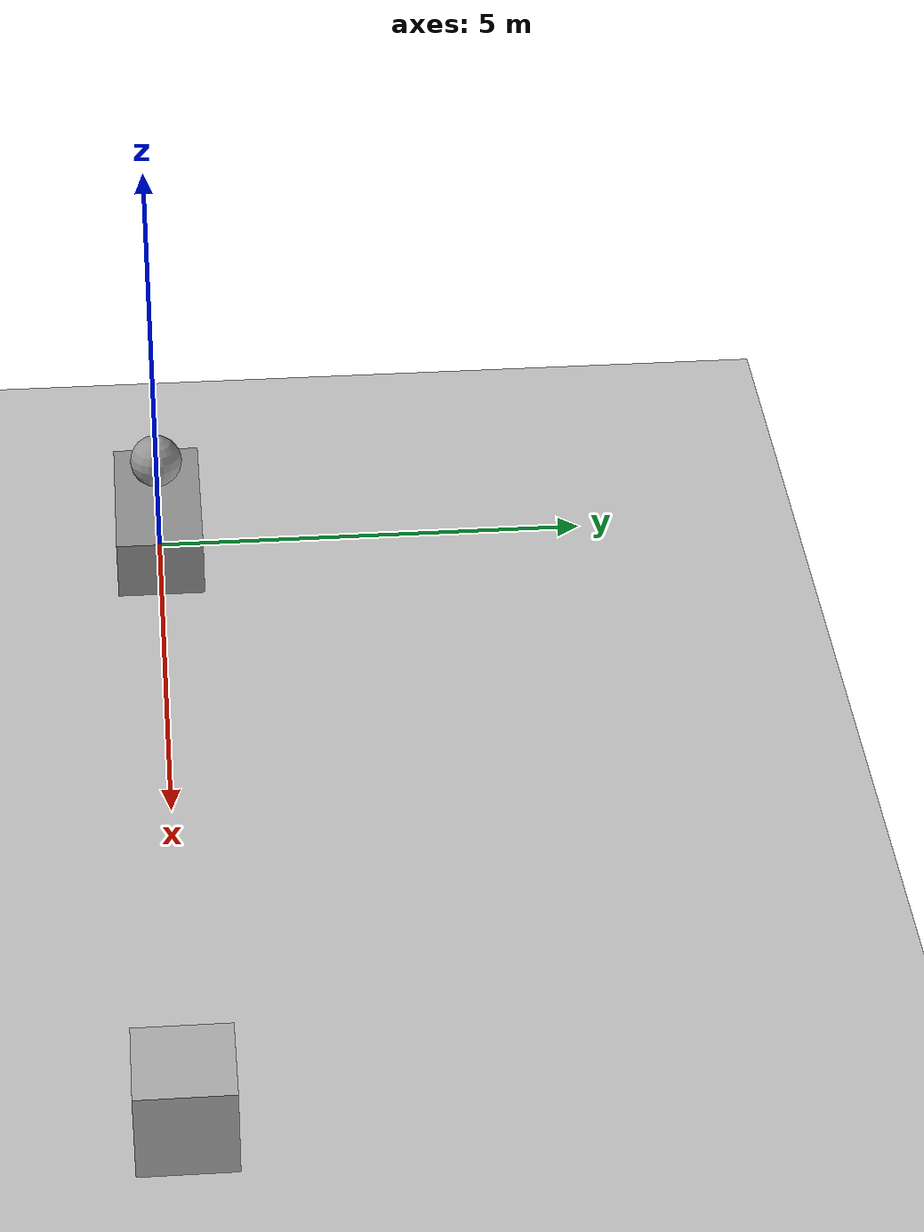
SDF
<?xml version="1.0"?>
<sdf version="1.4">
  <world name="default">

    <!-- Ground Plane -->
    <include>
      <uri>model://ground_plane</uri>
    </include>

    <include>
      <uri>model://sun</uri>
    </include>

    <model name="car">
      <include>
            <static>false</static>
        <uri>model://car</uri>
        <pose> 0 0 0 0 0 0</pose>
      </include>
    </model>

    <model name="my_model">
      <pose>10 0 0.5 0 0 0</pose>
      <static>true</static>
      <link name="link">
        <inertial>
          <mass>1.0</mass>
          <inertia> <!-- inertias are tricky to compute -->
            <!-- http://gazebosim.org/tutorials?tut=inertia&cat=build_robot -->
            <ixx>0.083</ixx>       <!-- for a box: ixx = 0.083 * mass * (y*y + z*z) -->
            <ixy>0.0</ixy>         <!-- for a box: ixy = 0 -->
            <ixz>0.0</ixz>         <!-- for a box: ixz = 0 -->
            <iyy>0.083</iyy>       <!-- for a box: iyy = 0.083 * mass * (x*x + z*z) -->
            <iyz>0.0</iyz>         <!-- for a box: iyz = 0 -->
            <izz>0.083</izz>       <!-- for a box: izz = 0.083 * mass * (x*x + y*y) -->
          </inertia>
        </inertial>
        <collision name="collision">
          <geometry>
            <box>
              <size>1 1 1</size>
            </box>
          </geometry>
        </collision>
        <visual name="visual">
          <geometry>
            <box>
              <size>1 1 1</size>
            </box>
          </geometry>
        </visual>
      </link>
    </model>

  </world>
</sdf>

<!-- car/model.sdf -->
<sdf version='1.7'>
  <model name='car'>
    <link name='car_box'>
      <inertial>
        <mass>1</mass>
        <inertia>
          <ixx>0.166667</ixx>
          <ixy>0</ixy>
          <ixz>0</ixz>
          <iyy>0.166667</iyy>
          <iyz>0</iyz>
          <izz>0.166667</izz>
        </inertia>
        <pose>0 0 0 0 -0 0</pose>
      </inertial>
      <pose>0 0 0.35 0 -0 0</pose>
      <gravity>1</gravity>
      <self_collide>0</self_collide>
      <kinematic>0</kinematic>
      <enable_wind>0</enable_wind>
      <visual name='visual'>
        <pose>0 0 0 0 -0 0</pose>
        <geometry>
          <box>
            <size>2 1 0.7</size>
          </box>
        </geometry>
        <material>
          <lighting>1</lighting>
          <script>
            <uri>file://media/materials/scripts/gazebo.material</uri>
            <name>Gazebo/Grey</name>
          </script>
          <shader type='pixel'>
            <normal_map>__default__</normal_map>
          </shader>
          <ambient>0.3 0.3 0.3 1</ambient>
          <diffuse>0.7 0.7 0.7 1</diffuse>
          <specular>0.01 0.01 0.01 1</specular>
          <emissive>0 0 0 1</emissive>
        </material>
        <transparency>0</transparency>
        <cast_shadows>1</cast_shadows>
      </visual>
      <collision name='collision'>
        <laser_retro>0</laser_retro>
        <max_contacts>10</max_contacts>
        <pose>0 0 0 0 -0 0</pose>
        <geometry>
          <box>
            <size>2 1 0.7</size>
          </box>
        </geometry>
        <surface>
          <friction>
            <ode>
              <mu>1</mu>
              <mu2>1</mu2>
              <fdir1>0 0 0</fdir1>
              <slip1>0</slip1>
              <slip2>0</slip2>
            </ode>
            <torsional>
              <coefficient>1</coefficient>
              <patch_radius>0</patch_radius>
              <surface_radius>0</surface_radius>
              <use_patch_radius>1</use_patch_radius>
              <ode>
                <slip>0</slip>
              </ode>
            </torsional>
          </friction>
          <bounce>
            <restitution_coefficient>0</restitution_coefficient>
            <threshold>1e+06</threshold>
          </bounce>
          <contact>
            <collide_without_contact>0</collide_without_contact>
            <collide_without_contact_bitmask>1</collide_without_contact_bitmask>
            <collide_bitmask>1</collide_bitmask>
            <ode>
              <soft_cfm>0</soft_cfm>
              <soft_erp>0.2</soft_erp>
              <kp>1e+13</kp>
              <kd>1</kd>
              <max_vel>0.01</max_vel>
              <min_depth>0</min_depth>
            </ode>
            <bullet>
              <split_impulse>1</split_impulse>
              <split_impulse_penetration_threshold>-0.01</split_impulse_penetration_threshold>
              <soft_cfm>0</soft_cfm>
              <soft_erp>0.2</soft_erp>
              <kp>1e+13</kp>
              <kd>1</kd>
            </bullet>
          </contact>
        </surface>
      </collision>
    </link>
    <link name='link_airbag'>
      <inertial>
        <mass>1</mass>
        <inertia>
          <ixx>0.1</ixx>
          <ixy>0</ixy>
          <ixz>0</ixz>
          <iyy>0.1</iyy>
          <iyz>0</iyz>
          <izz>0.1</izz>
        </inertia>
        <pose>0 0 0 0 -0 0</pose>
      </inertial>
      <pose>0 0 1.2 0 -0 0</pose>
      <gravity>1</gravity>
      <self_collide>0</self_collide>
      <kinematic>0</kinematic>
      <enable_wind>0</enable_wind>
      <visual name='airbag_visual'>
        <pose>0 0 0 0 -0 0</pose>
        <geometry>
          <sphere>
            <radius>0.3</radius>
          </sphere>
        </geometry>
        <material>
          <lighting>1</lighting>
          <script>
            <uri>file://media/materials/scripts/gazebo.material</uri>
            <name>Gazebo/Grey</name>
          </script>
          <shader type='pixel'>
            <normal_map>__default__</normal_map>
          </shader>
          <ambient>0.3 0.3 0.3 1</ambient>
          <diffuse>0.7 0.7 0.7 1</diffuse>
          <specular>0.01 0.01 0.01 1</specular>
          <emissive>0 0 0 1</emissive>
        </material>
        <transparency>0</transparency>
        <cast_shadows>1</cast_shadows>
      </visual>
      <collision name='collision'>
        <laser_retro>0</laser_retro>
        <max_contacts>10</max_contacts>
        <pose>0 0 0 0 -0 0</pose>
        <geometry>
          <sphere>
            <radius>0.3</radius>
          </sphere>
        </geometry>
        <surface>
          <friction>
            <ode>
              <mu>1</mu>
              <mu2>1</mu2>
              <fdir1>0 0 0</fdir1>
              <slip1>0</slip1>
              <slip2>0</slip2>
            </ode>
            <torsional>
              <coefficient>1</coefficient>
              <patch_radius>0</patch_radius>
              <surface_radius>0</surface_radius>
              <use_patch_radius>1</use_patch_radius>
              <ode>
                <slip>0</slip>
              </ode>
            </torsional>
          </friction>
          <bounce>
            <restitution_coefficient>0</restitution_coefficient>
            <threshold>1e+06</threshold>
          </bounce>
          <contact>
            <collide_without_contact>0</collide_without_contact>
            <collide_without_contact_bitmask>1</collide_without_contact_bitmask>
            <collide_bitmask>1</collide_bitmask>
            <ode>
              <soft_cfm>0</soft_cfm>
              <soft_erp>0.2</soft_erp>
              <kp>1e+13</kp>
              <kd>1</kd>
              <max_vel>0.01</max_vel>
              <min_depth>0</min_depth>
            </ode>
            <bullet>
              <split_impulse>1</split_impulse>
              <split_impulse_penetration_threshold>-0.01</split_impulse_penetration_threshold>
              <soft_cfm>0</soft_cfm>
              <soft_erp>0.2</soft_erp>
              <kp>1e+13</kp>
              <kd>1</kd>
            </bullet>
          </contact>
        </surface>
      </collision>
    </link>
    <joint name='car::car_link_JOINT_0' type='fixed'>
      <parent>link_airbag</parent>
      <child>car_box</child>
      <pose>0 0 0 0 -0 0</pose>
      <axis>
        <xyz>0 1 0</xyz>
        <limit>
          <lower>-1.79769e+308</lower>
          <upper>1.79769e+308</upper>
          <effort>-1</effort>
          <velocity>-1</velocity>
        </limit>
        <dynamics>
          <spring_reference>0</spring_reference>
          <spring_stiffness>0</spring_stiffness>
          <damping>0</damping>
          <friction>0</friction>
        </dynamics>
      </axis>
      <physics>
        <ode>
          <limit>
            <cfm>0</cfm>
            <erp>0.2</erp>
          </limit>
          <suspension>
            <cfm>0</cfm>
            <erp>0.2</erp>
          </suspension>
        </ode>
      </physics>
    </joint>
    <static>0</static>
    <allow_auto_disable>1</allow_auto_disable>
    <plugin name='ros_plugin' filename='libcar_gazebo.so'/>
  </model>
</sdf>
